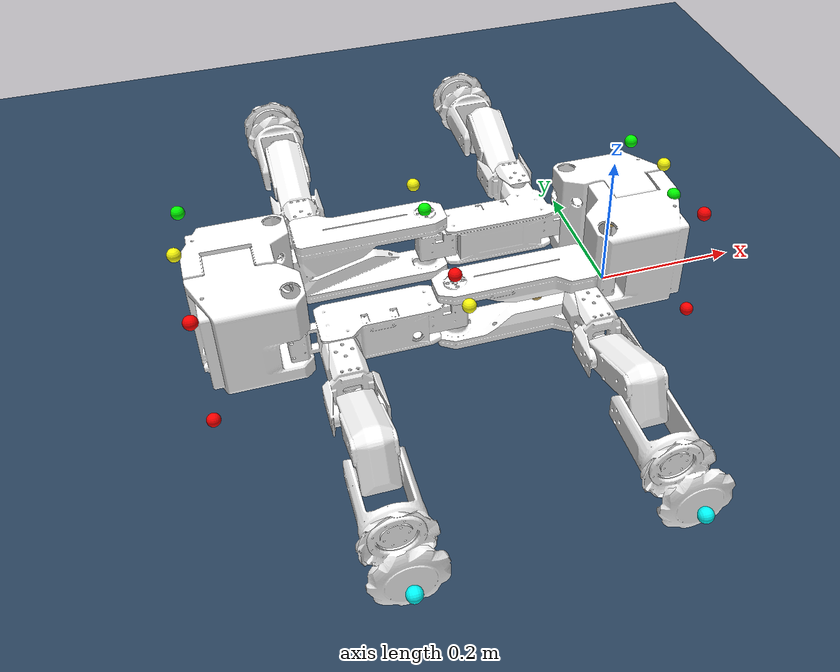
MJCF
<mujoco model="crimson scene">
  <include file="crimson_stand_legInit_forSimOnly.xml"/>

  <statistic center="0 0 0.1" extent="0.8"/>

  <visual>
    <headlight diffuse="0.6 0.6 0.6" ambient="0.3 0.3 0.3" specular="0 0 0"/>
    <rgba haze="0.15 0.25 0.35 1"/>
    <global azimuth="120" elevation="-20"/>
  </visual>

  <asset>
    <texture type="skybox" builtin="gradient" rgb1="0.3 0.5 0.7" rgb2="0 0 0" width="512" height="3072"/>
    <texture type="2d" name="groundplane" builtin="checker" mark="edge" rgb1="0.2 0.3 0.4" rgb2="0.1 0.2 0.3"
      markrgb="0.8 0.8 0.8" width="300" height="300"/>
    <material name="groundplane" texture="groundplane" texuniform="true" texrepeat="5 5" reflectance="0.2"/>
  </asset>

  <worldbody>
    <light pos="0 0 1.5" dir="0 0 -1" directional="true"/>
    <geom name="floor" pos="0 0 -0.12" size="0 0 0.05" type="plane" material="groundplane" friction="0.8"/>
  </worldbody>
</mujoco>

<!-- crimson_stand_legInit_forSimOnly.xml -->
<mujoco model="crimson_stand_legInit_forSimOnly">
  <compiler angle="radian" meshdir="./meshes/"/>

  <visual>
        <headlight ambient="0.5 0.5 0.5"/>
  </visual>
  <option timestep="0.0005" integrator="implicitfast" gravity="0 0 -9.81">
        <flag contact="enable" energy="enable" gravity="enable"/>
  </option>

  <asset>
    <mesh name="frameBasLink" file="frameBasLink.STL"/>
    <mesh name="frameLink2" file="frameLink2.STL"/>
    <mesh name="frameLink3" file="frameLink3.STL"/>
    <mesh name="frameLink4" file="frameLink4.STL"/>
    <mesh name="frameLink5" file="frameLink5.STL"/>
    <mesh name="frameLink6" file="frameLink6.STL"/>
    <mesh name="frameLink7" file="frameLink7.STL"/>
    <mesh name="frameLink8" file="frameLink8.STL"/>
    <mesh name="leg1Link1" file="leg1Link1.STL"/>
    <mesh name="leg1Link2" file="leg1Link2.STL"/>
    <mesh name="leg1Link3" file="leg1Link3.STL"/>
    <mesh name="leg3Link1" file="leg3Link1.STL"/>
    <mesh name="leg3Link2" file="leg3Link2.STL"/>
    <mesh name="leg3Link3" file="leg3Link3.STL"/>
    <mesh name="leg2Link1" file="leg2Link1.STL"/>
    <mesh name="leg2Link2" file="leg2Link2.STL"/>
    <mesh name="leg2Link3" file="leg2Link3.STL"/>
    <mesh name="leg0Link1" file="leg0Link1.STL"/>
    <mesh name="leg0Link2" file="leg0Link2.STL"/>
    <mesh name="leg0Link3" file="leg0Link3.STL"/>
  </asset>

  <contact>
    <exclude body1="trunk" body2="frameLink2"/>
    <exclude body1="trunk" body2="frameLink8"/>■
  </contact>

<worldbody>
  <body name="trunk" pos="0 0 0" quat="1 0 0 0">
    <freejoint name="root"/>
    <inertial pos="0.0336344 0.0576079 0.0596913" mass="0.5" diaginertia="0.0001 0.0001 0.0001"/>
    <site name="NodeSite1" pos="0.034 0.0576 0.0570" rgba="0.76 0.64 0.35 1" type="sphere" size="0.01"/>
    <geom name="frameBasLink" type="mesh" contype="0" conaffinity="0" group="1" density="0" rgba="1 1 1 1" mesh="frameBasLink"/>
    <geom type="mesh" rgba="1 1 1 1" mesh="frameBasLink"/>
    <site name="DimSite0" pos="0.135 -0.025 -0.075" rgba="1 0 0 1" type="sphere" size="0.01"/>
    <site name="DimSite1" pos="0.135 -0.025 0.105" rgba="1 0 0 1" type="sphere" size="0.01"/>
    <site name="DimSite2" pos="0.135 0.105 0.105" rgba="1 1 0.04 1" type="sphere" size="0.01"/>
    <body name="frameLink2" pos="0 0.079 -0.05245" quat="0.499998 0.5 0.500002 0.5">
      <inertial pos="0.0336344 0.0576079 0.0596913" quat="0.646457 -0.249757 -0.215756 0.687869" mass="0.5" diaginertia="0.0001 0.0001 0.0001"/>
      <site name="NodeSite2" pos="0.034 0.0576 0.0570" quat="-0.5 0.5 0.5 0.5" rgba="0.76 0.64 0.35 1" type="sphere" size="0.01"/>
      <joint name="frameJoint2" pos="0 0 0" axis="0 0 1"/>
      <geom name="frameLink2" type="mesh" contype="0" conaffinity="0" group="1" density="0" rgba="1 1 1 1" mesh="frameLink2"/>
      <geom type="mesh" rgba="1 1 1 1" mesh="frameLink2"/>
      <site name="DimSite3" pos="-0.04 0.150 0.120" rgba="0 1 0 1" type="sphere" size="0.01"/>
      <site name="DimSite4" pos="0.11 0.150 0.120" rgba="0 1 0 1" type="sphere" size="0.01"/>
      <site name="DimSite5" pos="0.11 -0.025 0.120" rgba="0 1 0 1" type="sphere" size="0.01"/>
      <body name="frameLink3" pos="0.079 0.05245 0" quat="-0.500004 0.499998 -0.500002 -0.499996">
        <inertial pos="0.11225 -3.8077e-08 -0.00068181" quat="0.500005 0.500005 0.499995 0.499995" mass="0.3" diaginertia="0.0001 0.0001 0.0001"/>
        <site name="NodeSite3" pos="0.112 0 0" quat="0 0 0 1" rgba="0.76 0.64 0.35 1" type="sphere" size="0.01"/>
        <joint name="frameJoint3" pos="0 0 0" axis="0 0 1"/>
        <geom name="frameLink3" type="mesh" contype="0" conaffinity="0" group="1" density="0" rgba="1 1 1 1" mesh="frameLink3"/>
        <geom type="mesh" rgba="1 1 1 1" mesh="frameLink3"/>
        <site name="DimSite_leg_16" pos="0.052 -0.073442 0" rgba="0 0 1 1" type="sphere" size="0.01"/>
        <body name="frameLink4" pos="0.2245 0 0">
          <inertial pos="0.1342 -0.002438 0.0021761" quat="0.00940962 0.710807 -0.0103741 0.703248" mass="0.5" diaginertia="0.0001 0.0001 0.0001"/>
          <site name="NodeSite4" pos="0.1342 0 0" quat="0 0 0 1" rgba="0.76 0.64 0.35 1" type="sphere" size="0.01"/>
          <joint name="frameJoint4" pos="0 0 0" axis="0 0 1"/>
          <geom name="frameLink4" type="mesh" contype="0" conaffinity="0" group="1" density="0" rgba="1 1 1 1" mesh="frameLink4"/>
          <geom type="mesh" rgba="1 1 1 1" mesh="frameLink4"/>
          <site name="DimSite10" pos="0 0 0.0625" rgba="0 1 0 1" type="sphere" size="0.01"/>
          <site name="DimSite20" pos="0 -0.06628 0.0625" rgba="1 1 0.04 1" type="sphere" size="0.01"/>
          <site name="DimSite11" pos="0 0 -0.0625" rgba="0 1 0 1" type="sphere" size="0.01"/>
          <site name="DimSite_leg_15" pos="0.17336 -0.073442 0" rgba="0 0 1 1" type="sphere" size="0.01"/>
          <body name="frameLink5" pos="0.2245 0 0" quat="0.707105 0 0 0.707108">
            <inertial pos="0.041026 -0.058567 0.020014" quat="0.38878 0.598981 -0.37038 0.594046" mass="0.5" diaginertia="0.0001 0.0001 0.0001"/>
            <site name="NodeSite5" pos="0.04 -0.059 0.02" quat="0.707 0 0 0.707" rgba="0.76 0.64 0.35 1" type="sphere" size="0.01"/>
            <joint name="frameJoint5" pos="0 0 0" axis="0 0 1"/>
            <geom name="frameLink5" type="mesh" contype="0" conaffinity="0" group="1" density="0" rgba="1 1 1 1" mesh="frameLink5"/>
            <geom type="mesh" rgba="1 1 1 1" mesh="frameLink5"/>
            <site name="DimSite8" pos="-0.04 -0.125 0.105" rgba="0 1 0 1" type="sphere" size="0.01"/>
            <site name="DimSite18" pos="0.055 -0.138 0.105" rgba="1 1 0.04 1" type="sphere" size="0.01"/>
            <site name="DimSite9" pos="-0.04 -0.125 -0.075" rgba="0 1 0 1" type="sphere" size="0.01"/>
            <body name="frameLink6" pos="0.079 0 -0.05245" quat="0.707105 -0.707108 0 0">
              <inertial pos="0.033709 -0.057893 -0.060249" quat="0.689226 0.219871 0.252459 0.642564" mass="0.5" diaginertia="0.0001 0.0001 0.0001"/>
              <site name="NodeSite6" pos="0.0337 -0.0579 -0.06" quat="0.5 0.5 -0.5 0.5" rgba="0.76 0.64 0.35 1" type="sphere" size="0.01"/>
              <joint name="frameJoint6" pos="0 0 0" axis="0 0 -1"/>
              <geom name="frameLink6" type="mesh" contype="0" conaffinity="0" group="1" density="0" rgba="1 1 1 1" mesh="frameLink6"/>
              <geom type="mesh" rgba="1 1 1 1" mesh="frameLink6"/>
              <site name="DimSite6" pos="0.115 0.025 -0.13" rgba="1 0 0 1" type="sphere" size="0.01"/>
              <site name="DimSite7" pos="0.115 -0.155 -0.13" rgba="1 0 0 1" type="sphere" size="0.01"/>
              <body name="frameLink7" pos="0.079 -0.05245 0" quat="-0.500004 -0.499998 0.500002 -0.499996">
                <inertial pos="0.14739 6.1669e-06 -0.00046903" quat="0.497919 0.502437 0.502059 0.497565" mass="0.3" diaginertia="0.0001 0.0001 0.0001"/>
                <site name="NodeSite7" pos="0.147 0 0" rgba="0.76 0.64 0.35 1" type="sphere" size="0.01"/>
                <joint name="frameJoint7" pos="0 0 0" axis="0 0 1"/>
                <geom name="frameLink7" type="mesh" contype="0" conaffinity="0" group="1" density="0" rgba="1 1 1 1" mesh="frameLink7"/>
                <geom type="mesh" rgba="1 1 1 1" mesh="frameLink7"/>
                <site name="DimSite_leg_17" pos="0.052 -0.073442 0" rgba="0 0 1 1" type="sphere" size="0.01"/>
                <body name="frameLink8" pos="0.2245 0 0">
                  <inertial pos="0.11936 -0.0028798 -5.2537e-05" quat="0.011588 0.70681 -0.0121484 0.707204" mass="0.5" diaginertia="0.0001 0.0001 0.0001"/>
                  <site name="NodeSite8" pos="0.120 -0.003 0" rgba="0.76 0.64 0.35 1" type="sphere" size="0.01"/>
                  <joint name="frameJoint8" pos="0 0 0" axis="0 0 1"/>
                  <geom name="frameLink8" type="mesh" contype="0" conaffinity="0" group="1" density="0" rgba="1 1 1 1" mesh="frameLink8"/>
                  <geom type="mesh" rgba="1 1 1 1" mesh="frameLink8"/>
                  <site name="DimSite12" pos="0 0 0.0625" rgba="1 0 0 1" type="sphere" size="0.01"/>
                  <site name="DimSite19" pos="0 -0.06628 0.0625" rgba="1 1 0.04 1" type="sphere" size="0.01"/>
                  <site name="DimSite13" pos="0 0 -0.0625" rgba="1 0 0 1" type="sphere" size="0.01"/>
                  <site name="DimSite_leg_14" pos="0.173 -0.073656 0" rgba="0 0 1 1" type="sphere" size="0.01"/>
                  <body name="leg1Link1" pos="0.17304 -0.073664 0" quat="0.707105 0 0 -0.707108">
                    <inertial pos="0.0709151 0.000262481 -0.0569816" quat="0.996414 -0.00280195 0.0842178 0.00765292" mass="0.497091" diaginertia="0.000357154 0.000337045 0.000226301"/>
                    <joint name="leg1Joint1" pos="0 0 0" axis="0 0 1"/>
                    <geom type="mesh" contype="0" conaffinity="0" group="1" density="0" rgba="1 1 1 1" mesh="leg1Link1"/>
                    <geom type="mesh" rgba="1 1 1 1" mesh="leg1Link1"/>
                    <body name="leg1Link2" pos="0.074919 0 0" quat="0.707105 0.707108 0 0">
                      <inertial pos="0.056725 0.011378 -0.00056886" quat="-0.0540989 0.705016 0.0490145 0.705424" mass="0.23246" diaginertia="0.000222892 0.000190317 9.72505e-05"/>
                      <joint name="leg1Joint2" pos="0 0 0" axis="0 0 1"/>
                      <geom type="mesh" contype="0" conaffinity="0" group="1" density="0" rgba="1 1 1 1" mesh="leg1Link2"/>
                      <geom type="mesh" rgba="1 1 1 1" mesh="leg1Link2"/>
                      <body name="leg1Link3" pos="0.10528 0 0">
                        <inertial pos="0.043398 -0.00046421 -0.00014369" quat="0.999714 0.0233587 -0.000448313 0.00515039" mass="0.10463" diaginertia="7.83485e-05 6.42514e-05 5.099e-05"/>
                        <joint name="leg1Joint3" pos="0 0 0" axis="0 0 1"/>
                        <site name="DimSite_legEnd_01" pos="0.17 0 0" rgba="0 1 1 1" type="sphere" size="0.01"/>
                        <geom type="mesh" contype="0" conaffinity="0" group="1" density="0" rgba="1 1 1 1" mesh="leg1Link3"/>
                        <geom type="mesh" rgba="1 1 1 1" mesh="leg1Link3"/>
                      </body>
                    </body>
                  </body>
                </body>
                <body name="leg3Link1" pos="0.051605 -0.073842 0" quat="0.707105 0 0 -0.707108">
                  <inertial pos="0.0709151 0.000262482 -0.0569816" quat="0.996414 -0.002802 0.0842178 0.00765307" mass="0.497091" diaginertia="0.000357154 0.000337045 0.000226301"/>
                  <joint name="leg3Joint1" pos="0 0 0" axis="0 0 1"/>
                  <geom type="mesh" contype="0" conaffinity="0" group="1" density="0" rgba="1 1 1 1" mesh="leg3Link1"/>
                  <geom type="mesh" rgba="1 1 1 1" mesh="leg3Link1"/>
                  <body name="leg3Link2" pos="0.074919 0 0" quat="0.707105 0.707108 0 0">
                    <inertial pos="0.0567252 0.0113781 -0.000488184" quat="-0.0541001 0.705016 0.0490166 0.705424" mass="0.232456" diaginertia="0.00022289 0.000190313 9.72503e-05"/>
                    <joint name="leg3Joint2" pos="0 0 0" axis="0 0 1"/>
                    <geom type="mesh" contype="0" conaffinity="0" group="1" density="0" rgba="1 1 1 1" mesh="leg3Link2"/>
                    <geom type="mesh" rgba="1 1 1 1" mesh="leg3Link2"/>
                    <body name="leg3Link3" pos="0.10528 0 0">
                      <inertial pos="0.0433981 -0.000464208 -0.00014369" quat="0.999714 0.0233586 -0.000448336 0.00515051" mass="0.104632" diaginertia="7.83488e-05 6.42517e-05 5.09903e-05"/>
                      <joint name="leg3Joint3" pos="0 0 0" axis="0 0 1"/>
                      <site name="DimSite_legEnd_03" pos="0.17 0 0" rgba="0 1 1 1" type="sphere" size="0.01"/>
                      <geom type="mesh" contype="0" conaffinity="0" group="1" density="0" rgba="1 1 1 1" mesh="leg3Link3"/>
                      <geom type="mesh" rgba="1 1 1 1" mesh="leg3Link3"/>
                    </body>
                  </body>
                </body>
              </body>
            </body>
          </body>
          <body name="leg2Link1" pos="0.17336 -0.073442 0" quat="0.707105 0 0 -0.707108">
            <inertial pos="0.0700941 0.000175316 -0.0655504" quat="0.995302 -0.00195338 0.0962391 0.0103674" mass="0.412504" diaginertia="0.000319355 0.000305314 0.000204215"/>
            <joint name="leg2Joint1" pos="0 0 0" axis="0 0 1"/>
            <geom type="mesh" contype="0" conaffinity="0" group="1" density="0" rgba="1 1 1 1" mesh="leg2Link1"/>
            <geom type="mesh" rgba="1 1 1 1" mesh="leg2Link1"/>
            <body name="leg2Link2" pos="0.074919 0 0" quat="0.707105 0.707108 0 0">
              <inertial pos="0.0567252 0.0113781 -0.000568857" quat="-0.0541002 0.705016 0.0490166 0.705424" mass="0.232456" diaginertia="0.00022289 0.000190313 9.72503e-05"/>
              <joint name="leg2Joint2" pos="0 0 0" axis="0 0 1"/>
              <geom type="mesh" contype="0" conaffinity="0" group="1" density="0" rgba="1 1 1 1" mesh="leg2Link2"/>
              <geom type="mesh" rgba="1 1 1 1" mesh="leg2Link2"/>
              <body name="leg2Link3" pos="0.10528 0 0" quat="-3.67321e-06 0 0 1">
                <inertial pos="-0.0433981 0.000464208 -0.00014369" quat="0.999714 -0.0233586 0.000448336 0.00515051" mass="0.104632" diaginertia="7.83488e-05 6.42517e-05 5.09903e-05"/>
                <joint name="leg2Joint3" pos="0 0 0" axis="0 0 1"/>
                <site name="DimSite_legEnd_02" pos="-0.17 0 0" rgba="0 1 1 1" type="sphere" size="0.01"/>
                <geom type="mesh" contype="0" conaffinity="0" group="1" density="0" rgba="1 1 1 1" mesh="leg2Link3"/>
                <geom type="mesh" rgba="1 1 1 1" mesh="leg2Link3"/>
              </body>
            </body>
          </body>
        </body>
        <body name="leg0Link1" pos="0.051868 -0.07395 0" quat="0.707105 0 0 -0.707108">
          <inertial pos="0.070094 0.000175359 -0.0655502" quat="0.995302 -0.00195335 0.0962391 0.0103673" mass="0.412502" diaginertia="0.000319355 0.000305314 0.000204215"/>
          <joint name="leg0Joint1" pos="0 0 0" axis="0 0 1"/>
          <geom type="mesh" contype="0" conaffinity="0" group="1" density="0" rgba="1 1 1 1" mesh="leg0Link1"/>
          <geom type="mesh" rgba="1 1 1 1" mesh="leg0Link1"/>
          <body name="leg0Link2" pos="0.074919 0 0" quat="0.707105 0.707108 0 0">
            <inertial pos="0.0567259 0.0113787 -0.000568727" quat="-0.0541022 0.705017 0.049025 0.705422" mass="0.23246" diaginertia="0.000222893 0.000190315 9.72512e-05"/>
            <joint name="leg0Joint2" pos="0 0 0" axis="0 0 1"/>
            <geom type="mesh" contype="0" conaffinity="0" group="1" density="0" rgba="1 1 1 1" mesh="leg0Link2"/>
            <geom type="mesh" rgba="1 1 1 1" mesh="leg0Link2"/>
            <body name="leg0Link3" pos="0.10528 0 0">
              <inertial pos="0.0433981 -0.000464208 -0.00014369" quat="0.999714 0.0233586 -0.000448339 0.00515051" mass="0.104632" diaginertia="7.83488e-05 6.42517e-05 5.09903e-05"/>
              <joint name="leg0Joint3" pos="0 0 0" axis="0 0 1"/>
              <site name="DimSite_legEnd_00" pos="0.17 0 0" rgba="0 1 1 1" type="sphere" size="0.01"/>
              <geom type="mesh" contype="0" conaffinity="0" group="1" density="0" rgba="1 1 1 1" mesh="leg0Link3"/>
              <geom type="mesh" rgba="1 1 1 1" mesh="leg0Link3"/>
            </body>
          </body>
        </body>
      </body>
    </body>
	</body>
  </worldbody>

  <equality>
    <connect name="c1" body1="frameLink8" body2="trunk" anchor="0.2245 0 -0.01" solimp="1 1 0 0 0"/>
    <connect name="c2" body1="frameLink8" body2="trunk" anchor="0.2245 0 0.01" solimp="1 1 0 0 0"/>
  </equality>

  <actuator>
	<position name="frameJoint2_motor" ctrllimited="true" ctrlrange="-6.8 0" joint="frameJoint2" kp="30" kv="2.6087"/>
	<position name="frameJoint3_motor" ctrllimited="true" ctrlrange="-3.1416 3.1416" joint="frameJoint3" kp="30" kv="2.6087"/>
	<position name="frameJoint5_motor" ctrllimited="true" ctrlrange="-3.1416 3.1416" joint="frameJoint5" kp="30" kv="2.6087"/>
	<position name="frameJoint6_motor" ctrllimited="true" ctrlrange="-6.8 0" joint="frameJoint6" kp="30" kv="2.6087"/>
	<position name="frameJoint8_motor" ctrllimited="true" ctrlrange="-3.1416 3.1416" joint="frameJoint8" kp="30" kv="2.6087"/>

    <position name="FR_Joint1" ctrllimited="true" ctrlrange="-3.1416 3.1416" joint="leg1Joint1" kp="10" kv="0.869565"/>
    <position name="FR_Joint2" ctrllimited="true" ctrlrange="-3.1416 3.1416" joint="leg1Joint2" kp="10" kv="0.869565"/>
    <position name="FR_Joint3" ctrllimited="true" ctrlrange="-3.1416 3.1416" joint="leg1Joint3" kp="10" kv="0.869565"/>
    <position name="RR_Joint1" ctrllimited="true" ctrlrange="-3.1416 3.1416" joint="leg3Joint1" kp="10" kv="0.869565"/>
    <position name="RR_Joint2" ctrllimited="true" ctrlrange="-3.1416 3.1416" joint="leg3Joint2" kp="10" kv="0.869565"/>
    <position name="RR_Joint3" ctrllimited="true" ctrlrange="-3.1416 3.1416" joint="leg3Joint3" kp="10" kv="0.869565"/>
    <position name="RL_Joint1" ctrllimited="true" ctrlrange="-3.1416 3.1416" joint="leg2Joint1" kp="10" kv="0.869565"/>
    <position name="RL_Joint2" ctrllimited="true" ctrlrange="-3.1416 3.1416" joint="leg2Joint2" kp="10" kv="0.869565"/>
    <position name="RL_Joint3" ctrllimited="true" ctrlrange="-3.1416 3.1416" joint="leg2Joint3" kp="10" kv="0.869565"/>
    <position name="FL_Joint1" ctrllimited="true" ctrlrange="-3.1416 3.1416" joint="leg0Joint1" kp="10" kv="0.869565"/>
    <position name="FL_Joint2" ctrllimited="true" ctrlrange="-3.1416 3.1416" joint="leg0Joint2" kp="10" kv="0.869565"/>
    <position name="FL_Joint3" ctrllimited="true" ctrlrange="-3.1416 3.1416" joint="leg0Joint3" kp="10" kv="0.869565"/>
   </actuator>
</mujoco>
